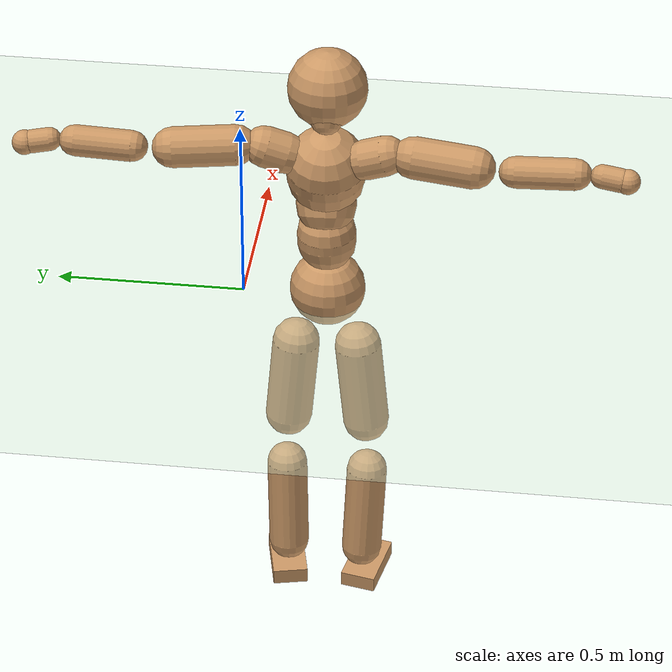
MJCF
<mujoco model="humanoid">
  <compiler coordinate="local" angle="radian"/>
  <default>
    <joint damping="0.0" armature="0.01" stiffness="0.0" limited="true"/>
    <geom conaffinity="1" condim="3" contype="7" margin="0.001" rgba="0.8 0.6 .4 1"/>
  </default>
  <asset>
    <texture type="skybox" builtin="gradient" rgb1=".4 .5 .6" rgb2="0 0 0" width="100" height="100"/>
    <texture builtin="flat" height="1278" mark="cross" markrgb="1 1 1" name="texgeom" random="0.01" rgb1="0.8 0.6 0.4" rgb2="0.8 0.6 0.4" type="cube" width="127"/>
    <texture builtin="checker" height="100" name="texplane" rgb1="0 0 0" rgb2="0.8 0.8 0.8" type="2d" width="100"/>
    <material name="MatPlane" reflectance="0.5" shininess="1" specular="1" texrepeat="60 60" texture="texplane"/>
    <material name="geom" texture="texgeom" texuniform="true"/>
  </asset>
  <worldbody>
    <light cutoff="100" diffuse="1 1 1" dir="-0 0 -1.3" directional="true" exponent="1" pos="0 0 1.3" specular=".1 .1 .1"/>
    <geom conaffinity="1" condim="3" name="floor" pos="0 0 0" rgba="0.8 0.9 0.8 1" size="100 100 .2" type="plane" material="MatPlane"/>
    <body name="Pelvis" pos="-0.0011 -0.2253 0.0295">
      <freejoint name="Pelvis"/>
      <geom type="sphere" contype="1" conaffinity="1" density="500" size="0.1004" pos="0.0000 0.0000 0.0000" name="Pelvis"/>
      <body name="L_Hip" pos="-0.0075 0.0769 -0.0965">
        <joint name="L_Hip_x" type="hinge" pos="0 0 0" axis="1 0 0" stiffness="800" damping="80" armature="0.02" range="-180.0000 180.0000"/>
        <joint name="L_Hip_y" type="hinge" pos="0 0 0" axis="0 1 0" stiffness="800" damping="80" armature="0.02" range="-180.0000 180.0000"/>
        <joint name="L_Hip_z" type="hinge" pos="0 0 0" axis="0 0 1" stiffness="800" damping="80" armature="0.02" range="-180.0000 180.0000"/>
        <geom type="capsule" contype="1" conaffinity="1" density="500" fromto="-0.0020 0.0067 -0.0795 -0.0081 0.0268 -0.3181" size="0.0632" name="L_Hip"/>
        <body name="L_Knee" pos="-0.0101 0.0335 -0.3977">
          <joint name="L_Knee_x" type="hinge" pos="0 0 0" axis="1 0 0" stiffness="800" damping="80" armature="0.02" range="-180.0000 180.0000"/>
          <joint name="L_Knee_y" type="hinge" pos="0 0 0" axis="0 1 0" stiffness="800" damping="80" armature="0.02" range="-180.0000 180.0000"/>
          <joint name="L_Knee_z" type="hinge" pos="0 0 0" axis="0 0 1" stiffness="800" damping="80" armature="0.02" range="-180.0000 180.0000"/>
          <geom type="capsule" contype="1" conaffinity="1" density="500" fromto="-0.0096 -0.0024 -0.0848 -0.0385 -0.0097 -0.3393" size="0.0548" name="L_Knee"/>
          <body name="L_Ankle" pos="-0.0481 -0.0122 -0.4241">
            <joint name="L_Ankle_x" type="hinge" pos="0 0 0" axis="1 0 0" stiffness="800" damping="80" armature="0.02" range="-180.0000 180.0000"/>
            <joint name="L_Ankle_y" type="hinge" pos="0 0 0" axis="0 1 0" stiffness="800" damping="80" armature="0.02" range="-180.0000 180.0000"/>
            <joint name="L_Ankle_z" type="hinge" pos="0 0 0" axis="0 0 1" stiffness="800" damping="80" armature="0.02" range="-180.0000 180.0000"/>
            <geom type="box" contype="1" conaffinity="1" density="500" pos="0.0594 0.0133 -0.0302" size="0.0827 0.0478 0.0222" quat="0.9940 0.0000 0.0000 0.1097" name="L_Ankle"/>
            <body name="L_Toe" pos="0.1189 0.0265 -0.0603">
              <joint name="L_Toe_x" type="hinge" pos="0 0 0" axis="1 0 0" stiffness="500" damping="50" armature="0.02" range="-180.0000 180.0000"/>
              <joint name="L_Toe_y" type="hinge" pos="0 0 0" axis="0 1 0" stiffness="500" damping="50" armature="0.02" range="-180.0000 180.0000"/>
              <joint name="L_Toe_z" type="hinge" pos="0 0 0" axis="0 0 1" stiffness="500" damping="50" armature="0.02" range="-180.0000 180.0000"/>
              <geom type="box" contype="1" conaffinity="1" density="500" pos="0.0000 0.0000 0.0296" size="0.001 0.0024 0.0011" quat="0.9933 0.0000 0.0000 0.1157" name="L_Toe"/>
            </body>
          </body>
        </body>
      </body>
      <body name="R_Hip" pos="-0.003 -0.0741 -0.0965">
        <joint name="R_Hip_x" type="hinge" pos="0 0 0" axis="1 0 0" stiffness="800" damping="80" armature="0.02" range="-180.0000 180.0000"/>
        <joint name="R_Hip_y" type="hinge" pos="0 0 0" axis="0 1 0" stiffness="800" damping="80" armature="0.02" range="-180.0000 180.0000"/>
        <joint name="R_Hip_z" type="hinge" pos="0 0 0" axis="0 0 1" stiffness="800" damping="80" armature="0.02" range="-180.0000 180.0000"/>
        <geom type="capsule" contype="1" conaffinity="1" density="500" fromto="-0.0025 -0.0084 -0.0810 -0.0099 -0.0334 -0.3239" size="0.0623" name="R_Hip"/>
        <body name="R_Knee" pos="-0.0123 -0.0418 -0.4049">
          <joint name="R_Knee_x" type="hinge" pos="0 0 0" axis="1 0 0" stiffness="800" damping="80" armature="0.02" range="-180.0000 180.0000"/>
          <joint name="R_Knee_y" type="hinge" pos="0 0 0" axis="0 1 0" stiffness="800" damping="80" armature="0.02" range="-180.0000 180.0000"/>
          <joint name="R_Knee_z" type="hinge" pos="0 0 0" axis="0 0 1" stiffness="800" damping="80" armature="0.02" range="-180.0000 180.0000"/>
          <geom type="capsule" contype="1" conaffinity="1" density="500" fromto="-0.0091 0.0031 -0.0850 -0.0362 0.0125 -0.3402" size="0.055" name="R_Knee"/>
          <body name="R_Ankle" pos="-0.0453 0.0156 -0.4252">
            <joint name="R_Ankle_x" type="hinge" pos="0 0 0" axis="1 0 0" stiffness="800" damping="80" armature="0.02" range="-180.0000 180.0000"/>
            <joint name="R_Ankle_y" type="hinge" pos="0 0 0" axis="0 1 0" stiffness="800" damping="80" armature="0.02" range="-180.0000 180.0000"/>
            <joint name="R_Ankle_z" type="hinge" pos="0 0 0" axis="0 0 1" stiffness="800" damping="80" armature="0.02" range="-180.0000 180.0000"/>
            <geom type="box" contype="1" conaffinity="1" density="500" pos="0.0616 -0.0126 -0.0261" size="0.0854 0.0482 0.0217" quat="0.9950 0.0000 0.0000 -0.1003" name="R_Ankle"/>
            <body name="R_Toe" pos="0.1232 -0.0251 -0.0522">
              <joint name="R_Toe_x" type="hinge" pos="0 0 0" axis="1 0 0" stiffness="500" damping="50" armature="0.02" range="-180.0000 180.0000"/>
              <joint name="R_Toe_y" type="hinge" pos="0 0 0" axis="0 1 0" stiffness="500" damping="50" armature="0.02" range="-180.0000 180.0000"/>
              <joint name="R_Toe_z" type="hinge" pos="0 0 0" axis="0 0 1" stiffness="500" damping="50" armature="0.02" range="-180.0000 180.0000"/>
              <geom type="box" contype="1" conaffinity="1" density="500" pos="0.0000 0.0000 0.0285" size="0.0009 0.0024 0.0012" quat="0.9958 0.0000 0.0000 -0.0911" name="R_Toe"/>
            </body>
          </body>
        </body>
      </body>
      <body name="Torso" pos="-0.0258 -0.0028 0.1114">
        <joint name="Torso_x" type="hinge" pos="0 0 0" axis="1 0 0" stiffness="1000" damping="100" armature="0.02" range="-180.0000 180.0000"/>
        <joint name="Torso_y" type="hinge" pos="0 0 0" axis="0 1 0" stiffness="1000" damping="100" armature="0.02" range="-180.0000 180.0000"/>
        <joint name="Torso_z" type="hinge" pos="0 0 0" axis="0 0 1" stiffness="1000" damping="100" armature="0.02" range="-180.0000 180.0000"/>
        <geom type="capsule" contype="1" conaffinity="1" density="500" fromto="-0.0010 0.0027 0.0807 -0.0007 0.0018 0.0538" size="0.0773" name="Torso"/>
        <body name="Spine" pos="-0.0017 0.0045 0.1345">
          <joint name="Spine_x" type="hinge" pos="0 0 0" axis="1 0 0" stiffness="1000" damping="100" armature="0.02" range="-180.0000 180.0000"/>
          <joint name="Spine_y" type="hinge" pos="0 0 0" axis="0 1 0" stiffness="1000" damping="100" armature="0.02" range="-180.0000 180.0000"/>
          <joint name="Spine_z" type="hinge" pos="0 0 0" axis="0 0 1" stiffness="1000" damping="100" armature="0.02" range="-180.0000 180.0000"/>
          <geom type="capsule" contype="1" conaffinity="1" density="500" fromto="0.0190 0.0008 0.0322 0.0127 0.0005 0.0214" size="0.0783" name="Spine"/>
          <body name="Chest" pos="0.0317 0.0013 0.0536">
            <joint name="Chest_x" type="hinge" pos="0 0 0" axis="1 0 0" stiffness="1000" damping="100" armature="0.02" range="-180.0000 180.0000"/>
            <joint name="Chest_y" type="hinge" pos="0 0 0" axis="0 1 0" stiffness="1000" damping="100" armature="0.02" range="-180.0000 180.0000"/>
            <joint name="Chest_z" type="hinge" pos="0 0 0" axis="0 0 1" stiffness="1000" damping="100" armature="0.02" range="-180.0000 180.0000"/>
            <geom type="capsule" contype="1" conaffinity="1" density="500" fromto="-0.0260 -0.0011 0.0951 -0.0173 -0.0007 0.0634" size="0.1032" name="Chest"/>
            <body name="Neck" pos="-0.0483 -0.0036 0.2272">
              <joint name="Neck_x" type="hinge" pos="0 0 0" axis="1 0 0" stiffness="500" damping="50" armature="0.02" range="-180.0000 180.0000"/>
              <joint name="Neck_y" type="hinge" pos="0 0 0" axis="0 1 0" stiffness="500" damping="50" armature="0.02" range="-180.0000 180.0000"/>
              <joint name="Neck_z" type="hinge" pos="0 0 0" axis="0 0 1" stiffness="500" damping="50" armature="0.02" range="-180.0000 180.0000"/>
              <geom type="capsule" contype="1" conaffinity="1" density="500" fromto="0.0116 0.0006 0.0148 0.0464 0.0025 0.0592" size="0.0439" name="Neck"/>
              <body name="Head" pos="0.0581 0.0032 0.074">
                <joint name="Head_x" type="hinge" pos="0 0 0" axis="1 0 0" stiffness="500" damping="50" armature="0.02" range="-180.0000 180.0000"/>
                <joint name="Head_y" type="hinge" pos="0 0 0" axis="0 1 0" stiffness="500" damping="50" armature="0.02" range="-180.0000 180.0000"/>
                <joint name="Head_z" type="hinge" pos="0 0 0" axis="0 0 1" stiffness="500" damping="50" armature="0.02" range="-180.0000 180.0000"/>
                <geom type="sphere" contype="1" conaffinity="1" density="500" size="0.1029" pos="0.0000 0.0000 0.0000" name="Head"/>
              </body>
            </body>
            <body name="L_Thorax" pos="-0.0384 0.0826 0.1252">
              <joint name="L_Thorax_x" type="hinge" pos="0 0 0" axis="1 0 0" stiffness="500" damping="50" armature="0.02" range="-180.0000 180.0000"/>
              <joint name="L_Thorax_y" type="hinge" pos="0 0 0" axis="0 1 0" stiffness="500" damping="50" armature="0.02" range="-180.0000 180.0000"/>
              <joint name="L_Thorax_z" type="hinge" pos="0 0 0" axis="0 0 1" stiffness="500" damping="50" armature="0.02" range="-180.0000 180.0000"/>
              <geom type="capsule" contype="1" conaffinity="1" density="500" fromto="-0.0021 0.0179 0.0066 -0.0085 0.0715 0.0262" size="0.0534" name="L_Thorax"/>
              <body name="L_Shoulder" pos="-0.0107 0.0894 0.0328">
                <joint name="L_Shoulder_x" type="hinge" pos="0 0 0" axis="1 0 0" stiffness="500" damping="50" armature="0.02" range="-720.0000 720.0000"/>
                <joint name="L_Shoulder_y" type="hinge" pos="0 0 0" axis="0 1 0" stiffness="500" damping="50" armature="0.02" range="-720.0000 720.0000"/>
                <joint name="L_Shoulder_z" type="hinge" pos="0 0 0" axis="0 0 1" stiffness="500" damping="50" armature="0.02" range="-720.0000 720.0000"/>
                <geom type="capsule" contype="1" conaffinity="1" density="500" fromto="-0.0059 0.0535 -0.0027 -0.0238 0.2138 -0.0107" size="0.0528" name="L_Shoulder"/>
                <body name="L_Elbow" pos="-0.0297 0.2673 -0.0134">
                  <joint name="L_Elbow_x" type="hinge" pos="0 0 0" axis="1 0 0" stiffness="500" damping="50" armature="0.02" range="-720.0000 720.0000"/>
                  <joint name="L_Elbow_y" type="hinge" pos="0 0 0" axis="0 1 0" stiffness="500" damping="50" armature="0.02" range="-720.0000 720.0000"/>
                  <joint name="L_Elbow_z" type="hinge" pos="0 0 0" axis="0 0 1" stiffness="500" damping="50" armature="0.02" range="-720.0000 720.0000"/>
                  <geom type="capsule" contype="1" conaffinity="1" density="500" fromto="-0.0000 0.0491 0.0021 -0.0002 0.1963 0.0082" size="0.0404" name="L_Elbow"/>
                  <body name="L_Wrist" pos="-0.0002 0.2454 0.0103">
                    <joint name="L_Wrist_x" type="hinge" pos="0 0 0" axis="1 0 0" stiffness="300" damping="30" armature="0.02" range="-180.0000 180.0000"/>
                    <joint name="L_Wrist_y" type="hinge" pos="0 0 0" axis="0 1 0" stiffness="300" damping="30" armature="0.02" range="-180.0000 180.0000"/>
                    <joint name="L_Wrist_z" type="hinge" pos="0 0 0" axis="0 0 1" stiffness="300" damping="30" armature="0.02" range="-180.0000 180.0000"/>
                    <geom type="capsule" contype="1" conaffinity="1" density="500" fromto="-0.0026 0.0159 -0.0019 -0.0105 0.0637 -0.0078" size="0.0303" name="L_Wrist"/>
                    <body name="L_Hand" pos="-0.0131 0.0796 -0.0097">
                      <joint name="L_Hand_x" type="hinge" pos="0 0 0" axis="1 0 0" stiffness="300" damping="30" armature="0.02" range="-180.0000 180.0000"/>
                      <joint name="L_Hand_y" type="hinge" pos="0 0 0" axis="0 1 0" stiffness="300" damping="30" armature="0.02" range="-180.0000 180.0000"/>
                      <joint name="L_Hand_z" type="hinge" pos="0 0 0" axis="0 0 1" stiffness="300" damping="30" armature="0.02" range="-180.0000 180.0000"/>
                      <geom type="sphere" contype="1" conaffinity="1" density="500" size="0.0321" pos="0.0000 0.0000 0.0000" name="L_Hand"/>
                    </body>
                  </body>
                </body>
              </body>
            </body>
            <body name="R_Thorax" pos="-0.0435 -0.0843 0.1231">
              <joint name="R_Thorax_x" type="hinge" pos="0 0 0" axis="1 0 0" stiffness="500" damping="50" armature="0.02" range="-180.0000 180.0000"/>
              <joint name="R_Thorax_y" type="hinge" pos="0 0 0" axis="0 1 0" stiffness="500" damping="50" armature="0.02" range="-180.0000 180.0000"/>
              <joint name="R_Thorax_z" type="hinge" pos="0 0 0" axis="0 0 1" stiffness="500" damping="50" armature="0.02" range="-180.0000 180.0000"/>
              <geom type="capsule" contype="1" conaffinity="1" density="500" fromto="-0.0022 -0.0182 0.0070 -0.0090 -0.0728 0.0281" size="0.052" name="R_Thorax"/>
              <body name="R_Shoulder" pos="-0.0112 -0.091 0.0351">
                <joint name="R_Shoulder_x" type="hinge" pos="0 0 0" axis="1 0 0" stiffness="500" damping="50" armature="0.02" range="-720.0000 720.0000"/>
                <joint name="R_Shoulder_y" type="hinge" pos="0 0 0" axis="0 1 0" stiffness="500" damping="50" armature="0.02" range="-720.0000 720.0000"/>
                <joint name="R_Shoulder_z" type="hinge" pos="0 0 0" axis="0 0 1" stiffness="500" damping="50" armature="0.02" range="-720.0000 720.0000"/>
                <geom type="capsule" contype="1" conaffinity="1" density="500" fromto="-0.0048 -0.0515 -0.0031 -0.0190 -0.2060 -0.0126" size="0.0544" name="R_Shoulder"/>
                <body name="R_Elbow" pos="-0.0238 -0.2575 -0.0157">
                  <joint name="R_Elbow_x" type="hinge" pos="0 0 0" axis="1 0 0" stiffness="500" damping="50" armature="0.02" range="-720.0000 720.0000"/>
                  <joint name="R_Elbow_y" type="hinge" pos="0 0 0" axis="0 1 0" stiffness="500" damping="50" armature="0.02" range="-720.0000 720.0000"/>
                  <joint name="R_Elbow_z" type="hinge" pos="0 0 0" axis="0 0 1" stiffness="500" damping="50" armature="0.02" range="-720.0000 720.0000"/>
                  <geom type="capsule" contype="1" conaffinity="1" density="500" fromto="-0.0007 -0.0506 0.0021 -0.0028 -0.2024 0.0085" size="0.0409" name="R_Elbow"/>
                  <body name="R_Wrist" pos="-0.0035 -0.253 0.0107">
                    <joint name="R_Wrist_x" type="hinge" pos="0 0 0" axis="1 0 0" stiffness="300" damping="30" armature="0.02" range="-180.0000 180.0000"/>
                    <joint name="R_Wrist_y" type="hinge" pos="0 0 0" axis="0 1 0" stiffness="300" damping="30" armature="0.02" range="-180.0000 180.0000"/>
                    <joint name="R_Wrist_z" type="hinge" pos="0 0 0" axis="0 0 1" stiffness="300" damping="30" armature="0.02" range="-180.0000 180.0000"/>
                    <geom type="capsule" contype="1" conaffinity="1" density="500" fromto="-0.0020 -0.0159 -0.0014 -0.0081 -0.0636 -0.0058" size="0.0308" name="R_Wrist"/>
                    <body name="R_Hand" pos="-0.0102 -0.0795 -0.0072">
                      <joint name="R_Hand_x" type="hinge" pos="0 0 0" axis="1 0 0" stiffness="300" damping="30" armature="0.02" range="-180.0000 180.0000"/>
                      <joint name="R_Hand_y" type="hinge" pos="0 0 0" axis="0 1 0" stiffness="300" damping="30" armature="0.02" range="-180.0000 180.0000"/>
                      <joint name="R_Hand_z" type="hinge" pos="0 0 0" axis="0 0 1" stiffness="300" damping="30" armature="0.02" range="-180.0000 180.0000"/>
                      <geom type="sphere" contype="1" conaffinity="1" density="500" size="0.0321" pos="0.0000 0.0000 0.0000" name="R_Hand"/>
                    </body>
                  </body>
                </body>
              </body>
            </body>
          </body>
        </body>
      </body>
    </body>
  </worldbody>
  <actuator>
    <motor name="L_Hip_x" joint="L_Hip_x" gear="500"/>
    <motor name="L_Hip_y" joint="L_Hip_y" gear="500"/>
    <motor name="L_Hip_z" joint="L_Hip_z" gear="500"/>
    <motor name="L_Knee_x" joint="L_Knee_x" gear="500"/>
    <motor name="L_Knee_y" joint="L_Knee_y" gear="500"/>
    <motor name="L_Knee_z" joint="L_Knee_z" gear="500"/>
    <motor name="L_Ankle_x" joint="L_Ankle_x" gear="500"/>
    <motor name="L_Ankle_y" joint="L_Ankle_y" gear="500"/>
    <motor name="L_Ankle_z" joint="L_Ankle_z" gear="500"/>
    <motor name="L_Toe_x" joint="L_Toe_x" gear="500"/>
    <motor name="L_Toe_y" joint="L_Toe_y" gear="500"/>
    <motor name="L_Toe_z" joint="L_Toe_z" gear="500"/>
    <motor name="R_Hip_x" joint="R_Hip_x" gear="500"/>
    <motor name="R_Hip_y" joint="R_Hip_y" gear="500"/>
    <motor name="R_Hip_z" joint="R_Hip_z" gear="500"/>
    <motor name="R_Knee_x" joint="R_Knee_x" gear="500"/>
    <motor name="R_Knee_y" joint="R_Knee_y" gear="500"/>
    <motor name="R_Knee_z" joint="R_Knee_z" gear="500"/>
    <motor name="R_Ankle_x" joint="R_Ankle_x" gear="500"/>
    <motor name="R_Ankle_y" joint="R_Ankle_y" gear="500"/>
    <motor name="R_Ankle_z" joint="R_Ankle_z" gear="500"/>
    <motor name="R_Toe_x" joint="R_Toe_x" gear="500"/>
    <motor name="R_Toe_y" joint="R_Toe_y" gear="500"/>
    <motor name="R_Toe_z" joint="R_Toe_z" gear="500"/>
    <motor name="Torso_x" joint="Torso_x" gear="500"/>
    <motor name="Torso_y" joint="Torso_y" gear="500"/>
    <motor name="Torso_z" joint="Torso_z" gear="500"/>
    <motor name="Spine_x" joint="Spine_x" gear="500"/>
    <motor name="Spine_y" joint="Spine_y" gear="500"/>
    <motor name="Spine_z" joint="Spine_z" gear="500"/>
    <motor name="Chest_x" joint="Chest_x" gear="500"/>
    <motor name="Chest_y" joint="Chest_y" gear="500"/>
    <motor name="Chest_z" joint="Chest_z" gear="500"/>
    <motor name="Neck_x" joint="Neck_x" gear="500"/>
    <motor name="Neck_y" joint="Neck_y" gear="500"/>
    <motor name="Neck_z" joint="Neck_z" gear="500"/>
    <motor name="Head_x" joint="Head_x" gear="500"/>
    <motor name="Head_y" joint="Head_y" gear="500"/>
    <motor name="Head_z" joint="Head_z" gear="500"/>
    <motor name="L_Thorax_x" joint="L_Thorax_x" gear="500"/>
    <motor name="L_Thorax_y" joint="L_Thorax_y" gear="500"/>
    <motor name="L_Thorax_z" joint="L_Thorax_z" gear="500"/>
    <motor name="L_Shoulder_x" joint="L_Shoulder_x" gear="500"/>
    <motor name="L_Shoulder_y" joint="L_Shoulder_y" gear="500"/>
    <motor name="L_Shoulder_z" joint="L_Shoulder_z" gear="500"/>
    <motor name="L_Elbow_x" joint="L_Elbow_x" gear="500"/>
    <motor name="L_Elbow_y" joint="L_Elbow_y" gear="500"/>
    <motor name="L_Elbow_z" joint="L_Elbow_z" gear="500"/>
    <motor name="L_Wrist_x" joint="L_Wrist_x" gear="500"/>
    <motor name="L_Wrist_y" joint="L_Wrist_y" gear="500"/>
    <motor name="L_Wrist_z" joint="L_Wrist_z" gear="500"/>
    <motor name="L_Hand_x" joint="L_Hand_x" gear="500"/>
    <motor name="L_Hand_y" joint="L_Hand_y" gear="500"/>
    <motor name="L_Hand_z" joint="L_Hand_z" gear="500"/>
    <motor name="R_Thorax_x" joint="R_Thorax_x" gear="500"/>
    <motor name="R_Thorax_y" joint="R_Thorax_y" gear="500"/>
    <motor name="R_Thorax_z" joint="R_Thorax_z" gear="500"/>
    <motor name="R_Shoulder_x" joint="R_Shoulder_x" gear="500"/>
    <motor name="R_Shoulder_y" joint="R_Shoulder_y" gear="500"/>
    <motor name="R_Shoulder_z" joint="R_Shoulder_z" gear="500"/>
    <motor name="R_Elbow_x" joint="R_Elbow_x" gear="500"/>
    <motor name="R_Elbow_y" joint="R_Elbow_y" gear="500"/>
    <motor name="R_Elbow_z" joint="R_Elbow_z" gear="500"/>
    <motor name="R_Wrist_x" joint="R_Wrist_x" gear="500"/>
    <motor name="R_Wrist_y" joint="R_Wrist_y" gear="500"/>
    <motor name="R_Wrist_z" joint="R_Wrist_z" gear="500"/>
    <motor name="R_Hand_x" joint="R_Hand_x" gear="500"/>
    <motor name="R_Hand_y" joint="R_Hand_y" gear="500"/>
    <motor name="R_Hand_z" joint="R_Hand_z" gear="500"/>
  </actuator>
  <contact>
    <exclude body1="Torso" body2="Chest"/>
    <exclude body1="Head" body2="Chest"/>
    <exclude body1="R_Knee" body2="R_Toe"/>
    <exclude body1="R_Knee" body2="L_Ankle"/>
    <exclude body1="R_Knee" body2="L_Toe"/>
    <exclude body1="L_Knee" body2="L_Toe"/>
    <exclude body1="L_Knee" body2="R_Ankle"/>
    <exclude body1="L_Knee" body2="R_Toe"/>
    <exclude body1="L_Shoulder" body2="Chest"/>
    <exclude body1="R_Shoulder" body2="Chest"/>
  </contact>
  <sensor/>
  <size njmax="700" nconmax="700"/>
</mujoco>
